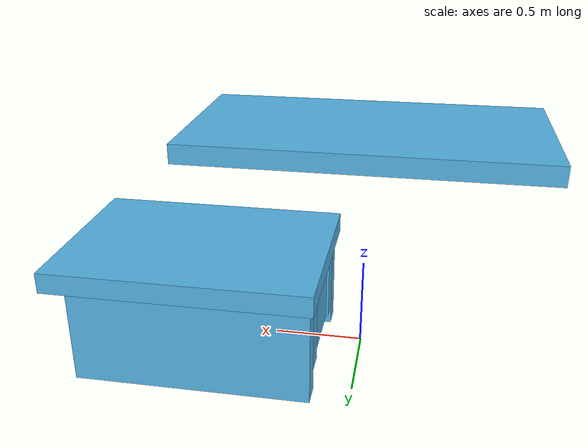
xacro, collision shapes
<?xml version="1.0"?>
<robot xmlns:xacro="http://ros.org/wiki/xacro" name="wam-v">
 <xacro:arg name="namespace" default="wamv"/>
  <xacro:property name="namespace" value="$(arg namespace)" scope="global" />
  <!-- Macro for creating the main collisions as simple shapes. -->
  <xacro:macro name="main_collisions" params="prefix reflect:=1">

<!-- Top part -->
    <collision name="topPart">
      <origin xyz="0.95 0.0 0.5"/> <!-- xyz="0.95 0.0 0.5"-->
      <geometry>
        <box size="1.5 1.1 0.12"/>
      </geometry>
    </collision>

    <!-- External sides -->
    <collision name="${prefix}_externalSide">
      <origin xyz="${0.95-0.05} ${((0.5-0.06875)*reflect)} ${0.5-0.29}"/> <!-- xyz="${0.95-0.05} ${((0.5-0.06875)*reflect)} ${0.5-0.29}" -->
      <geometry>
        <box size="1.35 0.13 0.67"/>
      </geometry>
    </collision>

    <!-- Internal sides -->
    <collision name="$prefix_internalSide">
      <origin xyz="${0.95-0.05} ${((0.446875-0.06875-0.065)*reflect)} ${0.5-0.25}"/> <!-- xyz="${0.95-0.05} ${((0.446875-0.06875-0.065)*reflect)} ${0.5-0.25}" -->
      <geometry>
        <box size="1.35 0.15625 0.5"/>
      </geometry>
    </collision>

   <!-- Center part -->
    <collision name="centerPart">
      <origin xyz="${0.95-0.6125} 0.0 ${0.5-0.25}"/> <!-- xyz="${0.95-0.6125} 0.0 ${0.5-0.25}"-->
      <geometry>
        <box size="0.20 0.5 0.5"/>
      </geometry>
    </collision>

   <!-- Botoom part -->
    <collision name="bottomPart">
      <origin xyz="0.95 0.0 ${0.5-0.25-0.365}"/> <!-- xyz="0.95 0.0 ${0.5-0.25-0.365}" -->
      <geometry>
        <box size="1.3 0.55 0.285"/>
      </geometry>
    </collision>

  </xacro:macro>

  <link name="${namespace}/base_link">
  </link>

  <joint name="${namespace}/dummy_joint" type = "fixed">
    <parent link="${namespace}/base_link"/>
    <child link="${namespace}/dummy_link"/>
  </joint>

  <!-- Basic model of the 16' WAM-V USV -->
  <link name="${namespace}/dummy_link">
    <visual>
      <origin xyz="-0.7 0.085 -0.45" rpy="0 0 0" />
      <geometry>
        <mesh filename="package://wamv_description/models/WAM-V-Base/mesh/WAM-V-Base.dae"/>
      </geometry>
    </visual>

    <!-- Left base collisions -->
    <xacro:main_collisions prefix="left" reflect="1" />

    <!-- Right side collisions -->
    <xacro:main_collisions prefix="right" reflect="-1" />

     <!-- Top base -->
    <collision name="top_base">
      <origin xyz="0 -0 1.25" rpy="0 0 0" />
      <geometry>
        <box size="1.85 1 0.1" />
      </geometry>
    </collision>

    <inertial>
      <!-- From WAM-V spec sheet -->
      <mass value="16.32"/>
      <inertia ixx="2.74" ixy="0.0" ixz="0.0" iyy="4.16" iyz="0.0" izz="4.7"/>
    </inertial>
  </link>

</robot>
